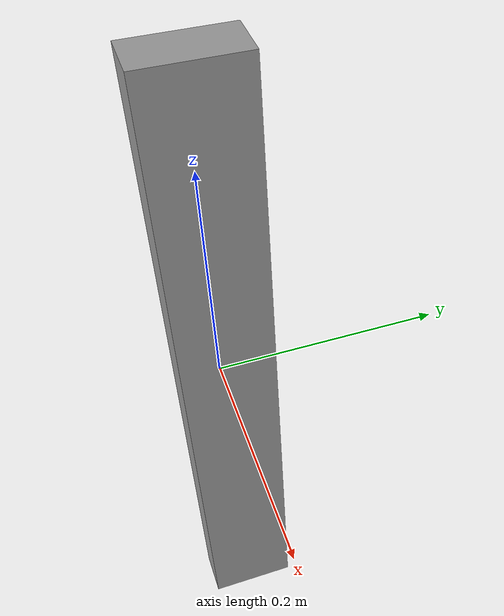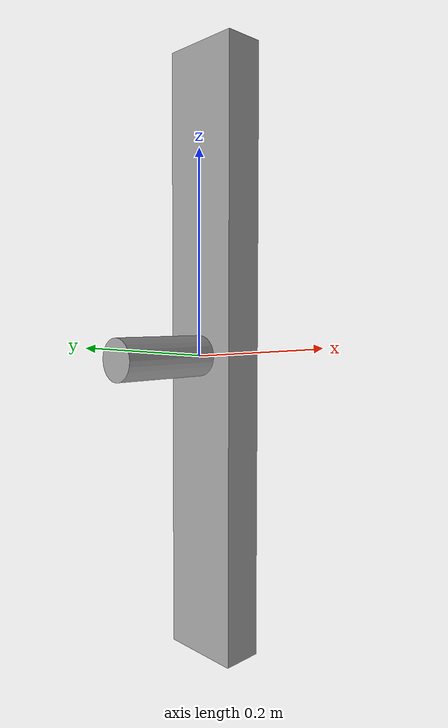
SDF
<?xml version="1.0" ?>

<sdf version="1.5">
  <model name="dzhanibekov">
    <link name="link">
      <inertial>
        <pose>-0.0033333333333333322 0 0  0 0 0</pose>
        <mass>3</mass>
        <inertia>
          <ixx>0.061266666666666664</ixx>
          <iyy>0.06446666666666666</iyy>
          <izz>0.005533333333333333</izz>
          <ixy>0.0</ixy>
          <ixz>0.0</ixz>
          <iyz>0</iyz>
        </inertia>
      </inertial>
      <collision name="boxCollision">
        <pose>0.02 0 0  0 0 0</pose>
        <geometry>
          <box>
            <size>0.04 0.08 0.6</size>
          </box>
        </geometry>
      </collision>
      <visual name="boxVisual">
        <pose>0.02 0 0  0 0 0</pose>
        <geometry>
          <box>
            <size>0.04 0.08 0.6</size>
          </box>
        </geometry>
        <material>
          <script>
            <uri>file://media/materials/scripts/gazebo.material</uri>
            <name>Gazebo/Grey</name>
          </script>
        </material>
      </visual>
      <collision name="cylinderCollision">
        <pose>-0.05 0 0  0 1.5707963267948966 0</pose>
        <geometry>
          <cylinder>
            <radius>0.02</radius>
            <length>0.1</length>
          </cylinder>
        </geometry>
      </collision>
      <visual name="cylinderVisual">
        <pose>-0.05 0 0  0 1.5707963267948966 0</pose>
        <geometry>
          <cylinder>
            <radius>0.02</radius>
            <length>0.1</length>
          </cylinder>
        </geometry>
        <material>
          <script>
            <uri>file://media/materials/scripts/gazebo.material</uri>
            <name>Gazebo/Grey</name>
          </script>
        </material>
      </visual>
    </link>
  </model>
</sdf>
